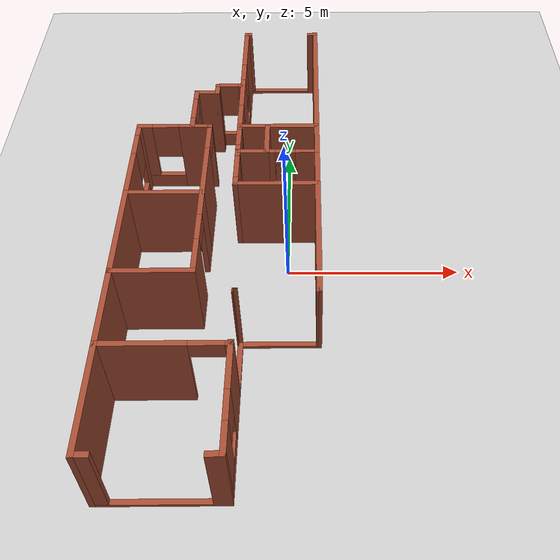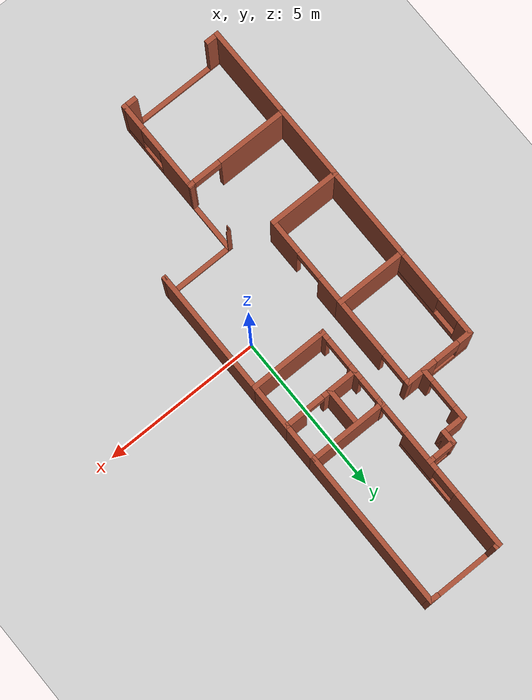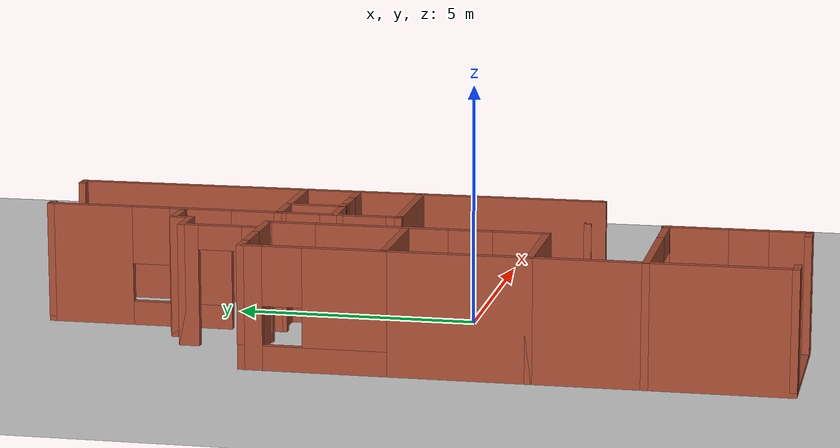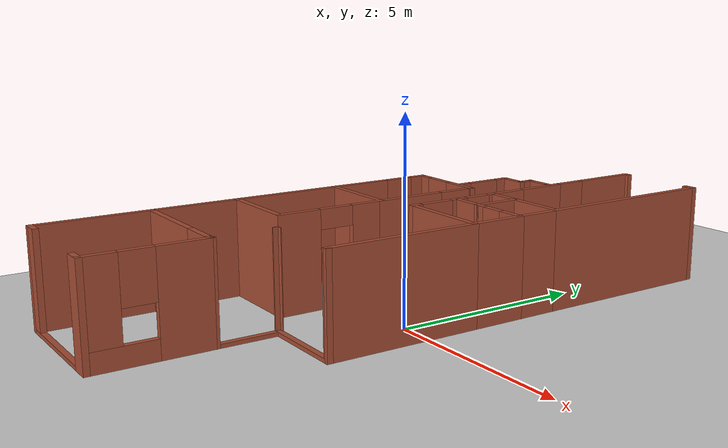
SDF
<sdf version="1.6">
 <world name="default">
  <model name="ground_plane">
   <static>1</static>
   <link name="link">
    <collision name="collision">
     <geometry><plane><normal>0 0 1</normal><size>100 100</size></plane></geometry>
     <surface><friction><ode><mu>100</mu><mu2>50</mu2></ode></friction></surface>
    </collision>
    <visual name="visual">
     <cast_shadows>0</cast_shadows>
     <geometry><plane><normal>0 0 1</normal><size>100 100</size></plane></geometry>
     <material>
      <script><uri>file://media/materials/scripts/gazebo.material</uri><name>Gazebo/Grey</name></script>
     </material>
    </visual>
   </link>
  </model>
  <model name="Home">
   <pose>-1.82753 0.8177 0 0 -0 0</pose>
   <link name="Wall_10">
    <collision name="Wall_10_Collision">
     <geometry><box><size>1.3 0.15 2.5</size></box></geometry>
     <pose>0 0 1.25 0 -0 0</pose>
    </collision>
    <visual name="Wall_10_Visual">
     <pose>0 0 1.25 0 -0 0</pose>
     <geometry><box><size>1.3 0.15 2.5</size></box></geometry>
     <material>
      <script><uri>file://media/materials/scripts/gazebo.material</uri><name>Gazebo/Bricks</name></script>
      <ambient>1 1 1 1</ambient>
     </material>
    </visual>
    <pose>2.70626 2.39506 0 0 0 -1.5708</pose>
   </link>
   <link name="Wall_12">
    <pose>0.356264 2.39506 0 0 0 -1.5708</pose>
    <visual name="Wall_12_Visual_0">
     <pose>-0.527825 0 1.25 0 -0 0</pose>
     <geometry><box><size>0.24435 0.15 2.5</size></box></geometry>
     <material>
      <script><uri>file://media/materials/scripts/gazebo.material</uri><name>Gazebo/Bricks</name></script>
      <ambient>1 1 1 1</ambient>
     </material>
    </visual>
    <collision name="Wall_12_Collision_0">
     <geometry><box><size>0.24435 0.15 2.5</size></box></geometry>
     <pose>-0.527825 0 1.25 0 -0 0</pose>
    </collision>
    <visual name="Wall_12_Visual_1">
     <pose>0.472175 0 1.25 0 -0 0</pose>
     <geometry><box><size>0.35565 0.15 2.5</size></box></geometry>
     <material>
      <script><uri>file://media/materials/scripts/gazebo.material</uri><name>Gazebo/Bricks</name></script>
      <ambient>1 1 1 1</ambient>
     </material>
    </visual>
    <collision name="Wall_12_Collision_1">
     <geometry><box><size>0.35565 0.15 2.5</size></box></geometry>
     <pose>0.472175 0 1.25 0 -0 0</pose>
    </collision>
    <visual name="Wall_12_Visual_2">
     <pose>-0.05565 0 2.25 0 -0 0</pose>
     <geometry><box><size>0.7 0.15 0.5</size></box></geometry>
     <material>
      <script><uri>file://media/materials/scripts/gazebo.material</uri><name>Gazebo/Bricks</name></script>
      <ambient>1 1 1 1</ambient>
     </material>
    </visual>
    <collision name="Wall_12_Collision_2">
     <geometry><box><size>0.7 0.15 0.5</size></box></geometry>
     <pose>-0.05565 0 2.25 0 -0 0</pose>
    </collision>
   </link>
   <link name="Wall_14">
    <collision name="Wall_14_Collision">
     <geometry><box><size>1 0.15 2.5</size></box></geometry>
     <pose>0 0 1.25 0 -0 0</pose>
    </collision>
    <visual name="Wall_14_Visual">
     <pose>0 0 1.25 0 -0 0</pose>
     <geometry><box><size>1 0.15 2.5</size></box></geometry>
     <material>
      <script><uri>file://media/materials/scripts/gazebo.material</uri><name>Gazebo/Bricks</name></script>
      <ambient>1 1 1 1</ambient>
     </material>
    </visual>
    <pose>0.781264 1.82006 0 0 -0 0</pose>
   </link>
   <link name="Wall_15">
    <collision name="Wall_15_Collision">
     <geometry><box><size>1.25 0.15 2.5</size></box></geometry>
     <pose>0 0 1.25 0 -0 0</pose>
    </collision>
    <visual name="Wall_15_Visual">
     <pose>0 0 1.25 0 -0 0</pose>
     <geometry><box><size>1.25 0.15 2.5</size></box></geometry>
     <material>
      <script><uri>file://media/materials/scripts/gazebo.material</uri><name>Gazebo/Bricks</name></script>
      <ambient>1 1 1 1</ambient>
     </material>
    </visual>
    <pose>1.20626 2.37006 0 0 -0 1.5708</pose>
   </link>
   <link name="Wall_17">
    <pose>1.95626 1.82006 0 0 -0 0</pose>
    <visual name="Wall_17_Visual_0">
     <pose>-0.661575 0 1.25 0 -0 0</pose>
     <geometry><box><size>0.32685 0.15 2.5</size></box></geometry>
     <material>
      <script><uri>file://media/materials/scripts/gazebo.material</uri><name>Gazebo/Bricks</name></script>
      <ambient>1 1 1 1</ambient>
     </material>
    </visual>
    <collision name="Wall_17_Collision_0">
     <geometry><box><size>0.32685 0.15 2.5</size></box></geometry>
     <pose>-0.661575 0 1.25 0 -0 0</pose>
    </collision>
    <visual name="Wall_17_Visual_1">
     <pose>0.463425 0 1.25 0 -0 0</pose>
     <geometry><box><size>0.72315 0.15 2.5</size></box></geometry>
     <material>
      <script><uri>file://media/materials/scripts/gazebo.material</uri><name>Gazebo/Bricks</name></script>
      <ambient>1 1 1 1</ambient>
     </material>
    </visual>
    <collision name="Wall_17_Collision_1">
     <geometry><box><size>0.72315 0.15 2.5</size></box></geometry>
     <pose>0.463425 0 1.25 0 -0 0</pose>
    </collision>
    <visual name="Wall_17_Visual_2">
     <pose>-0.19815 0 2.25 0 -0 0</pose>
     <geometry><box><size>0.6 0.15 0.5</size></box></geometry>
     <material>
      <script><uri>file://media/materials/scripts/gazebo.material</uri><name>Gazebo/Bricks</name></script>
      <ambient>1 1 1 1</ambient>
     </material>
    </visual>
    <collision name="Wall_17_Collision_2">
     <geometry><box><size>0.6 0.15 0.5</size></box></geometry>
     <pose>-0.19815 0 2.25 0 -0 0</pose>
    </collision>
   </link>
   <link name="Wall_19">
    <collision name="Wall_19_Collision">
     <geometry><box><size>1.5 0.15 2.5</size></box></geometry>
     <pose>0 0 1.25 0 -0 0</pose>
    </collision>
    <visual name="Wall_19_Visual">
     <pose>0 0 1.25 0 -0 0</pose>
     <geometry><box><size>1.5 0.15 2.5</size></box></geometry>
     <material>
      <script><uri>file://media/materials/scripts/gazebo.material</uri><name>Gazebo/Bricks</name></script>
      <ambient>1 1 1 1</ambient>
     </material>
    </visual>
    <pose>2.70626 1.14506 0 0 0 -1.5708</pose>
   </link>
   <link name="Wall_20">
    <collision name="Wall_20_Collision">
     <geometry><box><size>2.5 0.15 2.5</size></box></geometry>
     <pose>0 0 1.25 0 -0 0</pose>
    </collision>
    <visual name="Wall_20_Visual">
     <pose>0 0 1.25 0 -0 0</pose>
     <geometry><box><size>2.5 0.15 2.5</size></box></geometry>
     <material>
      <script><uri>file://media/materials/scripts/gazebo.material</uri><name>Gazebo/Bricks</name></script>
      <ambient>1 1 1 1</ambient>
     </material>
    </visual>
    <pose>1.53126 0.470062 0 0 -0 3.14159</pose>
   </link>
   <link name="Wall_21">
    <pose>0.356264 1.14506 0 0 -0 1.5708</pose>
    <visual name="Wall_21_Visual_0">
     <pose>-0.588587 0 1.25 0 -0 0</pose>
     <geometry><box><size>0.322825 0.15 2.5</size></box></geometry>
     <material>
      <script><uri>file://media/materials/scripts/gazebo.material</uri><name>Gazebo/Bricks</name></script>
      <ambient>1 1 1 1</ambient>
     </material>
    </visual>
    <collision name="Wall_21_Collision_0">
     <geometry><box><size>0.322825 0.15 2.5</size></box></geometry>
     <pose>-0.588587 0 1.25 0 -0 0</pose>
    </collision>
    <visual name="Wall_21_Visual_1">
     <pose>0.611413 0 1.25 0 -0 0</pose>
     <geometry><box><size>0.277175 0.15 2.5</size></box></geometry>
     <material>
      <script><uri>file://media/materials/scripts/gazebo.material</uri><name>Gazebo/Bricks</name></script>
      <ambient>1 1 1 1</ambient>
     </material>
    </visual>
    <collision name="Wall_21_Collision_1">
     <geometry><box><size>0.277175 0.15 2.5</size></box></geometry>
     <pose>0.611413 0 1.25 0 -0 0</pose>
    </collision>
    <visual name="Wall_21_Visual_2">
     <pose>0.022825 0 2.25 0 -0 0</pose>
     <geometry><box><size>0.9 0.15 0.5</size></box></geometry>
     <material>
      <script><uri>file://media/materials/scripts/gazebo.material</uri><name>Gazebo/Bricks</name></script>
      <ambient>1 1 1 1</ambient>
     </material>
    </visual>
    <collision name="Wall_21_Collision_2">
     <geometry><box><size>0.9 0.15 0.5</size></box></geometry>
     <pose>0.022825 0 2.25 0 -0 0</pose>
    </collision>
   </link>
   <link name="Wall_23">
    <collision name="Wall_23_Collision">
     <geometry><box><size>4 0.15 2.5</size></box></geometry>
     <pose>0 0 1.25 0 -0 0</pose>
    </collision>
    <visual name="Wall_23_Visual">
     <pose>0 0 1.25 0 -0 0</pose>
     <geometry><box><size>4 0.15 2.5</size></box></geometry>
     <material>
      <script><uri>file://media/materials/scripts/gazebo.material</uri><name>Gazebo/Bricks</name></script>
      <ambient>1 1 1 1</ambient>
     </material>
    </visual>
    <pose>2.70626 -1.45494 0 0 0 -1.5708</pose>
   </link>
   <link name="Wall_24">
    <pose>1.63126 -3.37994 0 0 -0 3.14159</pose>
    <visual name="Wall_24_Visual_0">
     <pose>-1.10165 0 1.25 0 -0 0</pose>
     <geometry><box><size>0.0967 0.15 2.5</size></box></geometry>
     <material>
      <script><uri>file://media/materials/scripts/gazebo.material</uri><name>Gazebo/Bricks</name></script>
      <ambient>1 1 1 1</ambient>
     </material>
    </visual>
    <collision name="Wall_24_Collision_0">
     <geometry><box><size>0.0967 0.15 2.5</size></box></geometry>
     <pose>-1.10165 0 1.25 0 -0 0</pose>
    </collision>
    <visual name="Wall_24_Visual_1">
     <pose>0.04835 0 0.05 0 -0 0</pose>
     <geometry><box><size>2.2033 0.15 0.1</size></box></geometry>
     <material>
      <script><uri>file://media/materials/scripts/gazebo.material</uri><name>Gazebo/Bricks</name></script>
      <ambient>1 1 1 1</ambient>
     </material>
    </visual>
    <collision name="Wall_24_Collision_1">
     <geometry><box><size>2.2033 0.15 0.1</size></box></geometry>
     <pose>0.04835 0 0.05 0 -0 0</pose>
    </collision>
    <visual name="Wall_24_Visual_2">
     <pose>1.1335 0 1.3 0 -0 0</pose>
     <geometry><box><size>0.033 0.15 2.4</size></box></geometry>
     <material>
      <script><uri>file://media/materials/scripts/gazebo.material</uri><name>Gazebo/Bricks</name></script>
      <ambient>1 1 1 1</ambient>
     </material>
    </visual>
    <collision name="Wall_24_Collision_2">
     <geometry><box><size>0.033 0.15 2.4</size></box></geometry>
     <pose>1.1335 0 1.3 0 -0 0</pose>
    </collision>
   </link>
   <link name="Wall_26">
    <pose>-1.63126 2.97971 0 0 -0 3.14159</pose>
    <visual name="Wall_26_Visual_0">
     <pose>-0.638025 0 1.25 0 -0 0</pose>
     <geometry><box><size>1.02395 0.15 2.5</size></box></geometry>
     <material>
      <script><uri>file://media/materials/scripts/gazebo.material</uri><name>Gazebo/Bricks</name></script>
      <ambient>1 1 1 1</ambient>
     </material>
    </visual>
    <collision name="Wall_26_Collision_0">
     <geometry><box><size>1.02395 0.15 2.5</size></box></geometry>
     <pose>-0.638025 0 1.25 0 -0 0</pose>
    </collision>
    <visual name="Wall_26_Visual_1">
     <pose>0.511975 0 0.25 0 -0 0</pose>
     <geometry><box><size>1.27605 0.15 0.5</size></box></geometry>
     <material>
      <script><uri>file://media/materials/scripts/gazebo.material</uri><name>Gazebo/Bricks</name></script>
      <ambient>1 1 1 1</ambient>
     </material>
    </visual>
    <collision name="Wall_26_Collision_1">
     <geometry><box><size>1.27605 0.15 0.5</size></box></geometry>
     <pose>0.511975 0 0.25 0 -0 0</pose>
    </collision>
    <visual name="Wall_26_Visual_2">
     <pose>0.911975 0 1.5 0 -0 0</pose>
     <geometry><box><size>0.47605 0.15 2</size></box></geometry>
     <material>
      <script><uri>file://media/materials/scripts/gazebo.material</uri><name>Gazebo/Bricks</name></script>
      <ambient>1 1 1 1</ambient>
     </material>
    </visual>
    <collision name="Wall_26_Collision_2">
     <geometry><box><size>0.47605 0.15 2</size></box></geometry>
     <pose>0.911975 0 1.5 0 -0 0</pose>
    </collision>
    <visual name="Wall_26_Visual_3">
     <pose>0.27395 0 1.9 0 -0 0</pose>
     <geometry><box><size>0.8 0.15 1.2</size></box></geometry>
     <material>
      <script><uri>file://media/materials/scripts/gazebo.material</uri><name>Gazebo/Bricks</name></script>
      <ambient>1 1 1 1</ambient>
     </material>
    </visual>
    <collision name="Wall_26_Collision_3">
     <geometry><box><size>0.8 0.15 1.2</size></box></geometry>
     <pose>0.27395 0 1.9 0 -0 0</pose>
    </collision>
   </link>
   <link name="Wall_28">
    <pose>-2.70626 1.55471 0 0 0 -1.5708</pose>
    <visual name="Wall_28_Visual_0">
     <pose>-1.24591 0 1.25 0 -0 0</pose>
     <geometry><box><size>0.508175 0.15 2.5</size></box></geometry>
     <material>
      <script><uri>file://media/materials/scripts/gazebo.material</uri><name>Gazebo/Bricks</name></script>
      <ambient>1 1 1 1</ambient>
     </material>
    </visual>
    <collision name="Wall_28_Collision_0">
     <geometry><box><size>0.508175 0.15 2.5</size></box></geometry>
     <pose>-1.24591 0 1.25 0 -0 0</pose>
    </collision>
    <visual name="Wall_28_Visual_1">
     <pose>0.254087 0 0.25 0 -0 0</pose>
     <geometry><box><size>2.49182 0.15 0.5</size></box></geometry>
     <material>
      <script><uri>file://media/materials/scripts/gazebo.material</uri><name>Gazebo/Bricks</name></script>
      <ambient>1 1 1 1</ambient>
     </material>
    </visual>
    <collision name="Wall_28_Collision_1">
     <geometry><box><size>2.49182 0.15 0.5</size></box></geometry>
     <pose>0.254087 0 0.25 0 -0 0</pose>
    </collision>
    <visual name="Wall_28_Visual_2">
     <pose>0.654087 0 1.5 0 -0 0</pose>
     <geometry><box><size>1.69182 0.15 2</size></box></geometry>
     <material>
      <script><uri>file://media/materials/scripts/gazebo.material</uri><name>Gazebo/Bricks</name></script>
      <ambient>1 1 1 1</ambient>
     </material>
    </visual>
    <collision name="Wall_28_Collision_2">
     <geometry><box><size>1.69182 0.15 2</size></box></geometry>
     <pose>0.654087 0 1.5 0 -0 0</pose>
    </collision>
    <visual name="Wall_28_Visual_3">
     <pose>-0.591825 0 1.9 0 -0 0</pose>
     <geometry><box><size>0.8 0.15 1.2</size></box></geometry>
     <material>
      <script><uri>file://media/materials/scripts/gazebo.material</uri><name>Gazebo/Bricks</name></script>
      <ambient>1 1 1 1</ambient>
     </material>
    </visual>
    <collision name="Wall_28_Collision_3">
     <geometry><box><size>0.8 0.15 1.2</size></box></geometry>
     <pose>-0.591825 0 1.9 0 -0 0</pose>
    </collision>
   </link>
   <link name="Wall_29">
    <collision name="Wall_29_Collision">
     <geometry><box><size>2.3 0.15 2.5</size></box></geometry>
     <pose>0 0 1.25 0 -0 0</pose>
    </collision>
    <visual name="Wall_29_Visual">
     <pose>0 0 1.25 0 -0 0</pose>
     <geometry><box><size>2.3 0.15 2.5</size></box></geometry>
     <material>
      <script><uri>file://media/materials/scripts/gazebo.material</uri><name>Gazebo/Bricks</name></script>
      <ambient>1 1 1 1</ambient>
     </material>
    </visual>
    <pose>-1.63126 0.129712 0 0 -0 0</pose>
   </link>
   <link name="Wall_31">
    <pose>-0.556261 1.55471 0 0 -0 1.5708</pose>
    <visual name="Wall_31_Visual_0">
     <pose>-0.540225 0 1.25 0 -0 0</pose>
     <geometry><box><size>1.91955 0.15 2.5</size></box></geometry>
     <material>
      <script><uri>file://media/materials/scripts/gazebo.material</uri><name>Gazebo/Bricks</name></script>
      <ambient>1 1 1 1</ambient>
     </material>
    </visual>
    <collision name="Wall_31_Collision_0">
     <geometry><box><size>1.91955 0.15 2.5</size></box></geometry>
     <pose>-0.540225 0 1.25 0 -0 0</pose>
    </collision>
    <visual name="Wall_31_Visual_1">
     <pose>1.40978 0 1.25 0 -0 0</pose>
     <geometry><box><size>0.18045 0.15 2.5</size></box></geometry>
     <material>
      <script><uri>file://media/materials/scripts/gazebo.material</uri><name>Gazebo/Bricks</name></script>
      <ambient>1 1 1 1</ambient>
     </material>
    </visual>
    <collision name="Wall_31_Collision_1">
     <geometry><box><size>0.18045 0.15 2.5</size></box></geometry>
     <pose>1.40978 0 1.25 0 -0 0</pose>
    </collision>
    <visual name="Wall_31_Visual_2">
     <pose>0.86955 0 2.25 0 -0 0</pose>
     <geometry><box><size>0.9 0.15 0.5</size></box></geometry>
     <material>
      <script><uri>file://media/materials/scripts/gazebo.material</uri><name>Gazebo/Bricks</name></script>
      <ambient>1 1 1 1</ambient>
     </material>
    </visual>
    <collision name="Wall_31_Collision_2">
     <geometry><box><size>0.9 0.15 0.5</size></box></geometry>
     <pose>0.86955 0 2.25 0 -0 0</pose>
    </collision>
   </link>
   <link name="Wall_33">
    <collision name="Wall_33_Collision">
     <geometry><box><size>3 0.15 2.5</size></box></geometry>
     <pose>0 0 1.25 0 -0 0</pose>
    </collision>
    <visual name="Wall_33_Visual">
     <pose>0 0 1.25 0 -0 0</pose>
     <geometry><box><size>3 0.15 2.5</size></box></geometry>
     <material>
      <script><uri>file://media/materials/scripts/gazebo.material</uri><name>Gazebo/Bricks</name></script>
      <ambient>1 1 1 1</ambient>
     </material>
    </visual>
    <pose>-2.70626 -1.29529 0 0 0 -1.5708</pose>
   </link>
   <link name="Wall_34">
    <collision name="Wall_34_Collision">
     <geometry><box><size>2.3 0.15 2.5</size></box></geometry>
     <pose>0 0 1.25 0 -0 0</pose>
    </collision>
    <visual name="Wall_34_Visual">
     <pose>0 0 1.25 0 -0 0</pose>
     <geometry><box><size>2.3 0.15 2.5</size></box></geometry>
     <material>
      <script><uri>file://media/materials/scripts/gazebo.material</uri><name>Gazebo/Bricks</name></script>
      <ambient>1 1 1 1</ambient>
     </material>
    </visual>
    <pose>-1.63126 -2.72029 0 0 -0 0</pose>
   </link>
   <link name="Wall_36">
    <pose>-0.556261 -1.29529 0 0 -0 1.5708</pose>
    <visual name="Wall_36_Visual_0">
     <pose>-0.920437 0 1.25 0 -0 0</pose>
     <geometry><box><size>1.15912 0.15 2.5</size></box></geometry>
     <material>
      <script><uri>file://media/materials/scripts/gazebo.material</uri><name>Gazebo/Bricks</name></script>
      <ambient>1 1 1 1</ambient>
     </material>
    </visual>
    <collision name="Wall_36_Collision_0">
     <geometry><box><size>1.15912 0.15 2.5</size></box></geometry>
     <pose>-0.920437 0 1.25 0 -0 0</pose>
    </collision>
    <visual name="Wall_36_Visual_1">
     <pose>1.02956 0 1.25 0 -0 0</pose>
     <geometry><box><size>0.940875 0.15 2.5</size></box></geometry>
     <material>
      <script><uri>file://media/materials/scripts/gazebo.material</uri><name>Gazebo/Bricks</name></script>
      <ambient>1 1 1 1</ambient>
     </material>
    </visual>
    <collision name="Wall_36_Collision_1">
     <geometry><box><size>0.940875 0.15 2.5</size></box></geometry>
     <pose>1.02956 0 1.25 0 -0 0</pose>
    </collision>
    <visual name="Wall_36_Visual_2">
     <pose>0.109125 0 2.25 0 -0 0</pose>
     <geometry><box><size>0.9 0.15 0.5</size></box></geometry>
     <material>
      <script><uri>file://media/materials/scripts/gazebo.material</uri><name>Gazebo/Bricks</name></script>
      <ambient>1 1 1 1</ambient>
     </material>
    </visual>
    <collision name="Wall_36_Collision_2">
     <geometry><box><size>0.9 0.15 0.5</size></box></geometry>
     <pose>0.109125 0 2.25 0 -0 0</pose>
    </collision>
   </link>
   <link name="Wall_38">
    <collision name="Wall_38_Collision">
     <geometry><box><size>2.4 0.15 2.5</size></box></geometry>
     <pose>0 0 1.25 0 -0 0</pose>
    </collision>
    <visual name="Wall_38_Visual">
     <pose>0 0 1.25 0 -0 0</pose>
     <geometry><box><size>2.4 0.15 2.5</size></box></geometry>
     <material>
      <script><uri>file://media/materials/scripts/gazebo.material</uri><name>Gazebo/Bricks</name></script>
      <ambient>1 1 1 1</ambient>
     </material>
    </visual>
    <pose>-2.70622 -3.84517 0 0 0 -1.57076</pose>
   </link>
   <link name="Wall_40">
    <pose>-1.07519 -4.97006 0 0 -0 0</pose>
    <visual name="Wall_40_Visual_0">
     <pose>-0.554037 0 1.25 0 -0 0</pose>
     <geometry><box><size>2.30393 0.15 2.5</size></box></geometry>
     <material>
      <script><uri>file://media/materials/scripts/gazebo.material</uri><name>Gazebo/Bricks</name></script>
      <ambient>1 1 1 1</ambient>
     </material>
    </visual>
    <collision name="Wall_40_Collision_0">
     <geometry><box><size>2.30393 0.15 2.5</size></box></geometry>
     <pose>-0.554037 0 1.25 0 -0 0</pose>
    </collision>
    <visual name="Wall_40_Visual_1">
     <pose>1.60196 0 1.25 0 -0 0</pose>
     <geometry><box><size>0.208075 0.15 2.5</size></box></geometry>
     <material>
      <script><uri>file://media/materials/scripts/gazebo.material</uri><name>Gazebo/Bricks</name></script>
      <ambient>1 1 1 1</ambient>
     </material>
    </visual>
    <collision name="Wall_40_Collision_1">
     <geometry><box><size>0.208075 0.15 2.5</size></box></geometry>
     <pose>1.60196 0 1.25 0 -0 0</pose>
    </collision>
    <visual name="Wall_40_Visual_2">
     <pose>1.04792 0 2.25 0 -0 0</pose>
     <geometry><box><size>0.9 0.15 0.5</size></box></geometry>
     <material>
      <script><uri>file://media/materials/scripts/gazebo.material</uri><name>Gazebo/Bricks</name></script>
      <ambient>1 1 1 1</ambient>
     </material>
    </visual>
    <collision name="Wall_40_Collision_2">
     <geometry><box><size>0.9 0.15 0.5</size></box></geometry>
     <pose>1.04792 0 2.25 0 -0 0</pose>
    </collision>
   </link>
   <link name="Wall_42">
    <pose>0.556039 -4.175 0 0 -0 1.57051</pose>
    <visual name="Wall_42_Visual_0">
     <pose>-0.780496 0 1.25 0 -0 0</pose>
     <geometry><box><size>0.179133 0.15 2.5</size></box></geometry>
     <material>
      <script><uri>file://media/materials/scripts/gazebo.material</uri><name>Gazebo/Bricks</name></script>
      <ambient>1 1 1 1</ambient>
     </material>
    </visual>
    <collision name="Wall_42_Collision_0">
     <geometry><box><size>0.179133 0.15 2.5</size></box></geometry>
     <pose>-0.780496 0 1.25 0 -0 0</pose>
    </collision>
    <visual name="Wall_42_Visual_1">
     <pose>0.089567 0 0.05 0 -0 0</pose>
     <geometry><box><size>1.56099 0.15 0.1</size></box></geometry>
     <material>
      <script><uri>file://media/materials/scripts/gazebo.material</uri><name>Gazebo/Bricks</name></script>
      <ambient>1 1 1 1</ambient>
     </material>
    </visual>
    <collision name="Wall_42_Collision_1">
     <geometry><box><size>1.56099 0.15 0.1</size></box></geometry>
     <pose>0.089567 0 0.05 0 -0 0</pose>
    </collision>
    <visual name="Wall_42_Visual_2">
     <pose>0.859872 0 1.3 0 -0 0</pose>
     <geometry><box><size>0.020381 0.15 2.4</size></box></geometry>
     <material>
      <script><uri>file://media/materials/scripts/gazebo.material</uri><name>Gazebo/Bricks</name></script>
      <ambient>1 1 1 1</ambient>
     </material>
    </visual>
    <collision name="Wall_42_Collision_2">
     <geometry><box><size>0.020381 0.15 2.4</size></box></geometry>
     <pose>0.859872 0 1.3 0 -0 0</pose>
    </collision>
   </link>
   <link name="Wall_44">
    <collision name="Wall_44_Collision">
     <geometry><box><size>3 0.15 2.5</size></box></geometry>
     <pose>0 0 1.25 0 -0 0</pose>
    </collision>
    <visual name="Wall_44_Visual">
     <pose>0 0 1.25 0 -0 0</pose>
     <geometry><box><size>3 0.15 2.5</size></box></geometry>
     <material>
      <script><uri>file://media/materials/scripts/gazebo.material</uri><name>Gazebo/Bricks</name></script>
      <ambient>1 1 1 1</ambient>
     </material>
    </visual>
    <pose>-2.70619 -6.39506 0 0 0 -1.5708</pose>
   </link>
   <link name="Wall_46">
    <pose>0.555814 -6.39506 0 0 0 -1.5708</pose>
    <visual name="Wall_46_Visual_0">
     <pose>-0.836713 0 1.25 0 -0 0</pose>
     <geometry><box><size>1.32658 0.15 2.5</size></box></geometry>
     <material>
      <script><uri>file://media/materials/scripts/gazebo.material</uri><name>Gazebo/Bricks</name></script>
      <ambient>1 1 1 1</ambient>
     </material>
    </visual>
    <collision name="Wall_46_Collision_0">
     <geometry><box><size>1.32658 0.15 2.5</size></box></geometry>
     <pose>-0.836713 0 1.25 0 -0 0</pose>
    </collision>
    <visual name="Wall_46_Visual_1">
     <pose>0.663287 0 0.25 0 -0 0</pose>
     <geometry><box><size>1.67342 0.15 0.5</size></box></geometry>
     <material>
      <script><uri>file://media/materials/scripts/gazebo.material</uri><name>Gazebo/Bricks</name></script>
      <ambient>1 1 1 1</ambient>
     </material>
    </visual>
    <collision name="Wall_46_Collision_1">
     <geometry><box><size>1.67342 0.15 0.5</size></box></geometry>
     <pose>0.663287 0 0.25 0 -0 0</pose>
    </collision>
    <visual name="Wall_46_Visual_2">
     <pose>1.06329 0 1.5 0 -0 0</pose>
     <geometry><box><size>0.873425 0.15 2</size></box></geometry>
     <material>
      <script><uri>file://media/materials/scripts/gazebo.material</uri><name>Gazebo/Bricks</name></script>
      <ambient>1 1 1 1</ambient>
     </material>
    </visual>
    <collision name="Wall_46_Collision_2">
     <geometry><box><size>0.873425 0.15 2</size></box></geometry>
     <pose>1.06329 0 1.5 0 -0 0</pose>
    </collision>
    <visual name="Wall_46_Visual_3">
     <pose>0.226575 0 1.9 0 -0 0</pose>
     <geometry><box><size>0.8 0.15 1.2</size></box></geometry>
     <material>
      <script><uri>file://media/materials/scripts/gazebo.material</uri><name>Gazebo/Bricks</name></script>
      <ambient>1 1 1 1</ambient>
     </material>
    </visual>
    <collision name="Wall_46_Collision_3">
     <geometry><box><size>0.8 0.15 1.2</size></box></geometry>
     <pose>0.226575 0 1.9 0 -0 0</pose>
    </collision>
   </link>
   <link name="Wall_47">
    <pose>-1.07519 -7.82006 0 0 -0 3.14159</pose>
    <visual name="Wall_47_Visual_0">
     <pose>-1.46958 0 1.25 0 -0 0</pose>
     <geometry><box><size>0.47285 0.15 2.5</size></box></geometry>
     <material>
      <script><uri>file://media/materials/scripts/gazebo.material</uri><name>Gazebo/Bricks</name></script>
      <ambient>1 1 1 1</ambient>
     </material>
    </visual>
    <collision name="Wall_47_Collision_0">
     <geometry><box><size>0.47285 0.15 2.5</size></box></geometry>
     <pose>-1.46958 0 1.25 0 -0 0</pose>
    </collision>
    <visual name="Wall_47_Visual_1">
     <pose>0.236425 0 0.05 0 -0 0</pose>
     <geometry><box><size>2.93915 0.15 0.1</size></box></geometry>
     <material>
      <script><uri>file://media/materials/scripts/gazebo.material</uri><name>Gazebo/Bricks</name></script>
      <ambient>1 1 1 1</ambient>
     </material>
    </visual>
    <collision name="Wall_47_Collision_1">
     <geometry><box><size>2.93915 0.15 0.1</size></box></geometry>
     <pose>0.236425 0 0.05 0 -0 0</pose>
    </collision>
    <visual name="Wall_47_Visual_2">
     <pose>1.46643 0 1.3 0 -0 0</pose>
     <geometry><box><size>0.47915 0.15 2.4</size></box></geometry>
     <material>
      <script><uri>file://media/materials/scripts/gazebo.material</uri><name>Gazebo/Bricks</name></script>
      <ambient>1 1 1 1</ambient>
     </material>
    </visual>
    <collision name="Wall_47_Collision_2">
     <geometry><box><size>0.47915 0.15 2.4</size></box></geometry>
     <pose>1.46643 0 1.3 0 -0 0</pose>
    </collision>
   </link>
   <link name="Wall_5">
    <pose>0.356264 5.39506 0 0 0 -1.5708</pose>
    <visual name="Wall_5_Visual_0">
     <pose>-1.58466 0 1.25 0 -0 0</pose>
     <geometry><box><size>1.83068 0.15 2.5</size></box></geometry>
     <material>
      <script><uri>file://media/materials/scripts/gazebo.material</uri><name>Gazebo/Bricks</name></script>
      <ambient>1 1 1 1</ambient>
     </material>
    </visual>
    <collision name="Wall_5_Collision_0">
     <geometry><box><size>1.83068 0.15 2.5</size></box></geometry>
     <pose>-1.58466 0 1.25 0 -0 0</pose>
    </collision>
    <visual name="Wall_5_Visual_1">
     <pose>2.41818 0 1.25 0 -0 0</pose>
     <geometry><box><size>0.16365 0.15 2.5</size></box></geometry>
     <material>
      <script><uri>file://media/materials/scripts/gazebo.material</uri><name>Gazebo/Bricks</name></script>
      <ambient>1 1 1 1</ambient>
     </material>
    </visual>
    <collision name="Wall_5_Collision_1">
     <geometry><box><size>0.16365 0.15 2.5</size></box></geometry>
     <pose>2.41818 0 1.25 0 -0 0</pose>
    </collision>
    <visual name="Wall_5_Visual_2">
     <pose>0.383512 0 0.25 0 -0 0</pose>
     <geometry><box><size>2.10568 0.15 0.5</size></box></geometry>
     <material>
      <script><uri>file://media/materials/scripts/gazebo.material</uri><name>Gazebo/Bricks</name></script>
      <ambient>1 1 1 1</ambient>
     </material>
    </visual>
    <collision name="Wall_5_Collision_2">
     <geometry><box><size>2.10568 0.15 0.5</size></box></geometry>
     <pose>0.383512 0 0.25 0 -0 0</pose>
    </collision>
    <visual name="Wall_5_Visual_3">
     <pose>0.783512 0 1.5 0 -0 0</pose>
     <geometry><box><size>1.30567 0.15 2</size></box></geometry>
     <material>
      <script><uri>file://media/materials/scripts/gazebo.material</uri><name>Gazebo/Bricks</name></script>
      <ambient>1 1 1 1</ambient>
     </material>
    </visual>
    <collision name="Wall_5_Collision_3">
     <geometry><box><size>1.30567 0.15 2</size></box></geometry>
     <pose>0.783512 0 1.5 0 -0 0</pose>
    </collision>
    <visual name="Wall_5_Visual_4">
     <pose>-0.269325 0 1.9 0 -0 0</pose>
     <geometry><box><size>0.8 0.15 1.2</size></box></geometry>
     <material>
      <script><uri>file://media/materials/scripts/gazebo.material</uri><name>Gazebo/Bricks</name></script>
      <ambient>1 1 1 1</ambient>
     </material>
    </visual>
    <collision name="Wall_5_Collision_4">
     <geometry><box><size>0.8 0.15 1.2</size></box></geometry>
     <pose>-0.269325 0 1.9 0 -0 0</pose>
    </collision>
    <visual name="Wall_5_Visual_5">
     <pose>1.88635 0 2.25 0 -0 0</pose>
     <geometry><box><size>0.9 0.15 0.5</size></box></geometry>
     <material>
      <script><uri>file://media/materials/scripts/gazebo.material</uri><name>Gazebo/Bricks</name></script>
      <ambient>1 1 1 1</ambient>
     </material>
    </visual>
    <collision name="Wall_5_Collision_5">
     <geometry><box><size>0.9 0.15 0.5</size></box></geometry>
     <pose>1.88635 0 2.25 0 -0 0</pose>
    </collision>
   </link>
   <link name="Wall_50">
    <pose>-0.044186 4.96994 0 0 -0 3.14159</pose>
    <visual name="Wall_50_Visual_0">
     <pose>-0.3629 0 1.25 0 -0 0</pose>
     <geometry><box><size>0.2242 0.15 2.5</size></box></geometry>
     <material>
      <script><uri>file://media/materials/scripts/gazebo.material</uri><name>Gazebo/Bricks</name></script>
      <ambient>1 1 1 1</ambient>
     </material>
    </visual>
    <collision name="Wall_50_Collision_0">
     <geometry><box><size>0.2242 0.15 2.5</size></box></geometry>
     <pose>-0.3629 0 1.25 0 -0 0</pose>
    </collision>
    <visual name="Wall_50_Visual_1">
     <pose>0.1121 0 0.25 0 -0 0</pose>
     <geometry><box><size>0.7258 0.15 0.5</size></box></geometry>
     <material>
      <script><uri>file://media/materials/scripts/gazebo.material</uri><name>Gazebo/Bricks</name></script>
      <ambient>1 1 1 1</ambient>
     </material>
    </visual>
    <collision name="Wall_50_Collision_1">
     <geometry><box><size>0.7258 0.15 0.5</size></box></geometry>
     <pose>0.1121 0 0.25 0 -0 0</pose>
    </collision>
    <visual name="Wall_50_Visual_2">
     <pose>0.4121 0 1.5 0 -0 0</pose>
     <geometry><box><size>0.1258 0.15 2</size></box></geometry>
     <material>
      <script><uri>file://media/materials/scripts/gazebo.material</uri><name>Gazebo/Bricks</name></script>
      <ambient>1 1 1 1</ambient>
     </material>
    </visual>
    <collision name="Wall_50_Collision_2">
     <geometry><box><size>0.1258 0.15 2</size></box></geometry>
     <pose>0.4121 0 1.5 0 -0 0</pose>
    </collision>
    <visual name="Wall_50_Visual_3">
     <pose>0.0492 0 1.9 0 -0 0</pose>
     <geometry><box><size>0.6 0.15 1.2</size></box></geometry>
     <material>
      <script><uri>file://media/materials/scripts/gazebo.material</uri><name>Gazebo/Bricks</name></script>
      <ambient>1 1 1 1</ambient>
     </material>
    </visual>
    <collision name="Wall_50_Collision_3">
     <geometry><box><size>0.6 0.15 1.2</size></box></geometry>
     <pose>0.0492 0 1.9 0 -0 0</pose>
    </collision>
   </link>
   <link name="Wall_52">
    <collision name="Wall_52_Collision">
     <geometry><box><size>0.5 0.15 2.5</size></box></geometry>
     <pose>0 0 1.25 0 -0 0</pose>
    </collision>
    <visual name="Wall_52_Visual">
     <pose>0 0 1.25 0 -0 0</pose>
     <geometry><box><size>0.5 0.15 2.5</size></box></geometry>
     <material>
      <script><uri>file://media/materials/scripts/gazebo.material</uri><name>Gazebo/Bricks</name></script>
      <ambient>1 1 1 1</ambient>
     </material>
    </visual>
    <pose>-0.444186 4.79494 0 0 0 -1.5708</pose>
   </link>
   <link name="Wall_53">
    <collision name="Wall_53_Collision">
     <geometry><box><size>0.8 0.15 2.5</size></box></geometry>
     <pose>0 0 1.25 0 -0 0</pose>
    </collision>
    <visual name="Wall_53_Visual">
     <pose>0 0 1.25 0 -0 0</pose>
     <geometry><box><size>0.8 0.15 2.5</size></box></geometry>
     <material>
      <script><uri>file://media/materials/scripts/gazebo.material</uri><name>Gazebo/Bricks</name></script>
      <ambient>1 1 1 1</ambient>
     </material>
    </visual>
    <pose>-0.769186 4.61994 0 0 -0 3.14159</pose>
   </link>
   <link name="Wall_55">
    <pose>-1.09419 3.81994 0 0 0 -1.5708</pose>
    <visual name="Wall_55_Visual_0">
     <pose>-0.658975 0 1.25 0 -0 0</pose>
     <geometry><box><size>0.43205 0.15 2.5</size></box></geometry>
     <material>
      <script><uri>file://media/materials/scripts/gazebo.material</uri><name>Gazebo/Bricks</name></script>
      <ambient>1 1 1 1</ambient>
     </material>
    </visual>
    <collision name="Wall_55_Collision_0">
     <geometry><box><size>0.43205 0.15 2.5</size></box></geometry>
     <pose>-0.658975 0 1.25 0 -0 0</pose>
    </collision>
    <visual name="Wall_55_Visual_1">
     <pose>0.666025 0 1.25 0 -0 0</pose>
     <geometry><box><size>0.41795 0.15 2.5</size></box></geometry>
     <material>
      <script><uri>file://media/materials/scripts/gazebo.material</uri><name>Gazebo/Bricks</name></script>
      <ambient>1 1 1 1</ambient>
     </material>
    </visual>
    <collision name="Wall_55_Collision_1">
     <geometry><box><size>0.41795 0.15 2.5</size></box></geometry>
     <pose>0.666025 0 1.25 0 -0 0</pose>
    </collision>
    <visual name="Wall_55_Visual_2">
     <pose>0.00705 0 2.25 0 -0 0</pose>
     <geometry><box><size>0.9 0.15 0.5</size></box></geometry>
     <material>
      <script><uri>file://media/materials/scripts/gazebo.material</uri><name>Gazebo/Bricks</name></script>
      <ambient>1 1 1 1</ambient>
     </material>
    </visual>
    <collision name="Wall_55_Collision_2">
     <geometry><box><size>0.9 0.15 0.5</size></box></geometry>
     <pose>0.00705 0 2.25 0 -0 0</pose>
    </collision>
   </link>
   <link name="Wall_6">
    <collision name="Wall_6_Collision">
     <geometry><box><size>2.5 0.15 2.5</size></box></geometry>
     <pose>0 0 1.25 0 -0 0</pose>
    </collision>
    <visual name="Wall_6_Visual">
     <pose>0 0 1.25 0 -0 0</pose>
     <geometry><box><size>2.5 0.15 2.5</size></box></geometry>
     <material>
      <script><uri>file://media/materials/scripts/gazebo.material</uri><name>Gazebo/Bricks</name></script>
      <ambient>1 1 1 1</ambient>
     </material>
    </visual>
    <pose>1.53126 2.97006 0 0 -0 0</pose>
   </link>
   <link name="Wall_7">
    <collision name="Wall_7_Collision">
     <geometry><box><size>5 0.15 2.5</size></box></geometry>
     <pose>0 0 1.25 0 -0 0</pose>
    </collision>
    <visual name="Wall_7_Visual">
     <pose>0 0 1.25 0 -0 0</pose>
     <geometry><box><size>5 0.15 2.5</size></box></geometry>
     <material>
      <script><uri>file://media/materials/scripts/gazebo.material</uri><name>Gazebo/Bricks</name></script>
      <ambient>1 1 1 1</ambient>
     </material>
    </visual>
    <pose>2.70626 5.39506 0 0 -0 1.5708</pose>
   </link>
   <link name="Wall_8">
    <pose>1.53126 7.82006 0 0 -0 3.14159</pose>
    <visual name="Wall_8_Visual_0">
     <pose>-1.07771 0 1.25 0 -0 0</pose>
     <geometry><box><size>0.344584 0.15 2.5</size></box></geometry>
     <material>
      <script><uri>file://media/materials/scripts/gazebo.material</uri><name>Gazebo/Bricks</name></script>
      <ambient>1 1 1 1</ambient>
     </material>
    </visual>
    <collision name="Wall_8_Collision_0">
     <geometry><box><size>0.344584 0.15 2.5</size></box></geometry>
     <pose>-1.07771 0 1.25 0 -0 0</pose>
    </collision>
    <visual name="Wall_8_Visual_1">
     <pose>0.172292 0 0.05 0 -0 0</pose>
     <geometry><box><size>2.15542 0.15 0.1</size></box></geometry>
     <material>
      <script><uri>file://media/materials/scripts/gazebo.material</uri><name>Gazebo/Bricks</name></script>
      <ambient>1 1 1 1</ambient>
     </material>
    </visual>
    <collision name="Wall_8_Collision_1">
     <geometry><box><size>2.15542 0.15 0.1</size></box></geometry>
     <pose>0.172292 0 0.05 0 -0 0</pose>
    </collision>
    <visual name="Wall_8_Visual_2">
     <pose>1.12837 0 1.3 0 -0 0</pose>
     <geometry><box><size>0.243264 0.15 2.4</size></box></geometry>
     <material>
      <script><uri>file://media/materials/scripts/gazebo.material</uri><name>Gazebo/Bricks</name></script>
      <ambient>1 1 1 1</ambient>
     </material>
    </visual>
    <collision name="Wall_8_Collision_2">
     <geometry><box><size>0.243264 0.15 2.4</size></box></geometry>
     <pose>1.12837 0 1.3 0 -0 0</pose>
    </collision>
   </link>
   <static>1</static>
  </model>
 </world>
</sdf>
